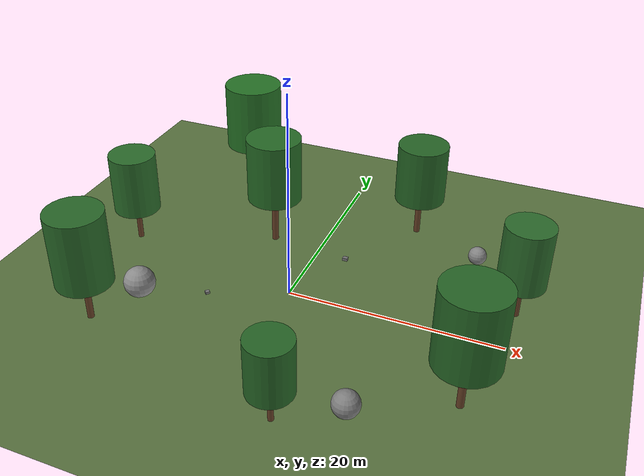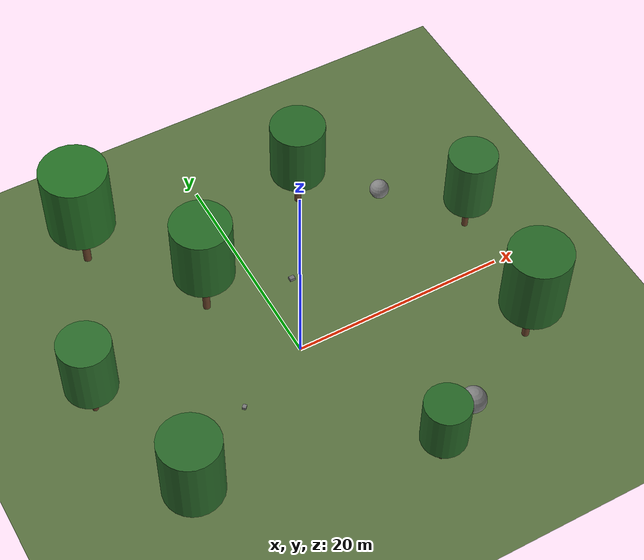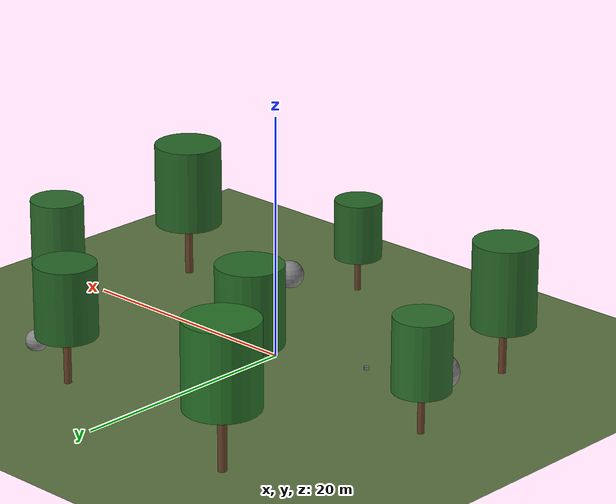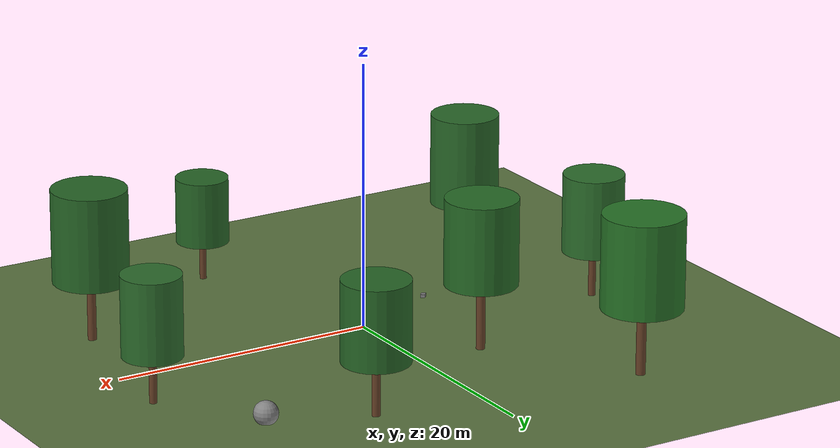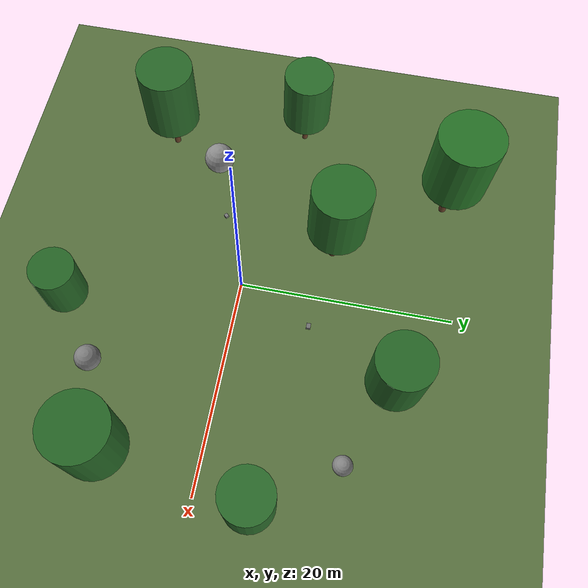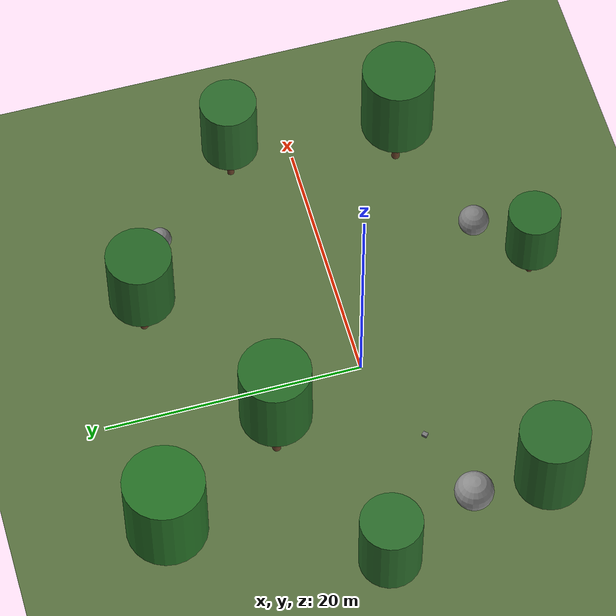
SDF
<?xml version="1.0" encoding="UTF-8"?>
<sdf version="1.9">
  <world name="outdoor_forest">
    <physics type="ode">
      <max_step_size>0.004</max_step_size>
      <real_time_factor>1.0</real_time_factor>
      <real_time_update_rate>250</real_time_update_rate>
    </physics>
    <gravity>0 0 -9.8</gravity>
    <magnetic_field>6e-06 2.3e-05 -4.2e-05</magnetic_field>
    <atmosphere type="adiabatic"/>
    <scene>
      <grid>false</grid>
      <ambient>0.4 0.4 0.4 1</ambient>
      <background>0.7 0.7 0.7 1</background>
      <shadows>true</shadows>
    </scene>
    <model name="ground_plane">
      <static>true</static>
      <link name="link">
        <collision name="collision">
          <geometry>
            <plane>
              <normal>0 0 1</normal>
              <size>1 1</size>
            </plane>
          </geometry>
          <surface>
            <friction>
              <ode/>
            </friction>
            <bounce/>
            <contact/>
          </surface>
        </collision>
        <visual name="visual">
          <geometry>
            <plane>
              <normal>0 0 1</normal>
              <size>500 500</size>
            </plane>
          </geometry>
          <material>
            <ambient>0.25 0.35 0.15 1</ambient>
            <diffuse>0.35 0.45 0.25 1</diffuse>
            <specular>0.05 0.05 0.05 1</specular>
          </material>
        </visual>
        <pose>0 0 0 0 -0 0</pose>
        <inertial>
          <pose>0 0 0 0 -0 0</pose>
          <mass>1</mass>
          <inertia>
            <ixx>1</ixx>
            <ixy>0</ixy>
            <ixz>0</ixz>
            <iyy>1</iyy>
            <iyz>0</iyz>
            <izz>1</izz>
          </inertia>
        </inertial>
        <enable_wind>false</enable_wind>
      </link>
      <pose>0 0 0 0 -0 0</pose>
      <self_collide>false</self_collide>
    </model>
    <light name="sunUTC" type="directional">
      <pose>0 0 500 0 -0 0</pose>
      <cast_shadows>true</cast_shadows>
      <intensity>1</intensity>
      <direction>0.001 0.625 -0.78</direction>
      <diffuse>0.904 0.904 0.904 1</diffuse>
      <specular>0.271 0.271 0.271 1</specular>
      <attenuation>
        <range>2000</range>
        <linear>0</linear>
        <constant>1</constant>
        <quadratic>0</quadratic>
      </attenuation>
      <spot>
        <inner_angle>0</inner_angle>
        <outer_angle>0</outer_angle>
        <falloff>0</falloff>
      </spot>
    </light>
    <spherical_coordinates>
      <surface_model>EARTH_WGS84</surface_model>
      <world_frame_orientation>ENU</world_frame_orientation>
      <latitude_deg>47.397971057728974</latitude_deg>
      <longitude_deg> 8.546163739800146</longitude_deg>
      <elevation>0</elevation>
    </spherical_coordinates>
    <!-- Forest Trees - Realistic pine/fir style with trunk and canopy -->
    <!-- Tree cluster 1 - North -->
    <model name="pine_tree_1">
      <pose>8 15 0 0 0 0</pose>
      <static>true</static>
      <link name="trunk">
        <pose>0 0 4 0 0 0</pose>
        <collision name="trunk_collision">
          <geometry>
            <cylinder>
              <radius>0.3</radius>
              <length>8</length>
            </cylinder>
          </geometry>
        </collision>
        <visual name="trunk_visual">
          <geometry>
            <cylinder>
              <radius>0.3</radius>
              <length>8</length>
            </cylinder>
          </geometry>
          <material>
            <ambient>0.3 0.2 0.1 1</ambient>
            <diffuse>0.4 0.25 0.15 1</diffuse>
          </material>
        </visual>
      </link>
      <link name="canopy">
        <pose>0 0 7 0 0 0</pose>
        <collision name="canopy_collision">
          <geometry>
            <cylinder>
              <radius>2.5</radius>
              <length>6</length>
            </cylinder>
          </geometry>
        </collision>
        <visual name="canopy_visual">
          <geometry>
            <cylinder>
              <radius>2.5</radius>
              <length>6</length>
            </cylinder>
          </geometry>
          <material>
            <ambient>0.1 0.3 0.1 1</ambient>
            <diffuse>0.15 0.4 0.15 1</diffuse>
          </material>
        </visual>
      </link>
    </model>

    <model name="pine_tree_2">
      <pose>-12 18 0 0 0 0.5</pose>
      <static>true</static>
      <link name="trunk">
        <pose>0 0 5 0 0 0</pose>
        <collision name="trunk_collision">
          <geometry>
            <cylinder>
              <radius>0.35</radius>
              <length>10</length>
            </cylinder>
          </geometry>
        </collision>
        <visual name="trunk_visual">
          <geometry>
            <cylinder>
              <radius>0.35</radius>
              <length>10</length>
            </cylinder>
          </geometry>
          <material>
            <ambient>0.3 0.2 0.1 1</ambient>
            <diffuse>0.4 0.25 0.15 1</diffuse>
          </material>
        </visual>
      </link>
      <link name="canopy">
        <pose>0 0 8.5 0 0 0</pose>
        <collision name="canopy_collision">
          <geometry>
            <cylinder>
              <radius>3.0</radius>
              <length>7</length>
            </cylinder>
          </geometry>
        </collision>
        <visual name="canopy_visual">
          <geometry>
            <cylinder>
              <radius>3.0</radius>
              <length>7</length>
            </cylinder>
          </geometry>
          <material>
            <ambient>0.1 0.35 0.1 1</ambient>
            <diffuse>0.15 0.45 0.15 1</diffuse>
          </material>
        </visual>
      </link>
    </model>

    <!-- Tree cluster 2 - East -->
    <model name="pine_tree_3">
      <pose>20 5 0 0 0 1.2</pose>
      <static>true</static>
      <link name="trunk">
        <pose>0 0 3.5 0 0 0</pose>
        <collision name="trunk_collision">
          <geometry>
            <cylinder>
              <radius>0.28</radius>
              <length>7</length>
            </cylinder>
          </geometry>
        </collision>
        <visual name="trunk_visual">
          <geometry>
            <cylinder>
              <radius>0.28</radius>
              <length>7</length>
            </cylinder>
          </geometry>
          <material>
            <ambient>0.3 0.2 0.1 1</ambient>
            <diffuse>0.4 0.25 0.15 1</diffuse>
          </material>
        </visual>
      </link>
      <link name="canopy">
        <pose>0 0 6.5 0 0 0</pose>
        <collision name="canopy_collision">
          <geometry>
            <cylinder>
              <radius>2.2</radius>
              <length>6</length>
            </cylinder>
          </geometry>
        </collision>
        <visual name="canopy_visual">
          <geometry>
            <cylinder>
              <radius>2.2</radius>
              <length>6</length>
            </cylinder>
          </geometry>
          <material>
            <ambient>0.12 0.32 0.12 1</ambient>
            <diffuse>0.17 0.42 0.17 1</diffuse>
          </material>
        </visual>
      </link>
    </model>

    <model name="pine_tree_4">
      <pose>18 -8 0 0 0 2.1</pose>
      <static>true</static>
      <link name="trunk">
        <pose>0 0 4.5 0 0 0</pose>
        <collision name="trunk_collision">
          <geometry>
            <cylinder>
              <radius>0.32</radius>
              <length>9</length>
            </cylinder>
          </geometry>
        </collision>
        <visual name="trunk_visual">
          <geometry>
            <cylinder>
              <radius>0.32</radius>
              <length>9</length>
            </cylinder>
          </geometry>
          <material>
            <ambient>0.3 0.2 0.1 1</ambient>
            <diffuse>0.4 0.25 0.15 1</diffuse>
          </material>
        </visual>
      </link>
      <link name="canopy">
        <pose>0 0 8 0 0 0</pose>
        <collision name="canopy_collision">
          <geometry>
            <cylinder>
              <radius>2.8</radius>
              <length>7</length>
            </cylinder>
          </geometry>
        </collision>
        <visual name="canopy_visual">
          <geometry>
            <cylinder>
              <radius>2.8</radius>
              <length>7</length>
            </cylinder>
          </geometry>
          <material>
            <ambient>0.1 0.3 0.1 1</ambient>
            <diffuse>0.15 0.4 0.15 1</diffuse>
          </material>
        </visual>
      </link>
    </model>

    <!-- Tree cluster 3 - West -->
    <model name="pine_tree_5">
      <pose>-15 -10 0 0 0 0.8</pose>
      <static>true</static>
      <link name="trunk">
        <pose>0 0 4 0 0 0</pose>
        <collision name="trunk_collision">
          <geometry>
            <cylinder>
              <radius>0.3</radius>
              <length>8</length>
            </cylinder>
          </geometry>
        </collision>
        <visual name="trunk_visual">
          <geometry>
            <cylinder>
              <radius>0.3</radius>
              <length>8</length>
            </cylinder>
          </geometry>
          <material>
            <ambient>0.3 0.2 0.1 1</ambient>
            <diffuse>0.4 0.25 0.15 1</diffuse>
          </material>
        </visual>
      </link>
      <link name="canopy">
        <pose>0 0 7.5 0 0 0</pose>
        <collision name="canopy_collision">
          <geometry>
            <cylinder>
              <radius>2.6</radius>
              <length>7</length>
            </cylinder>
          </geometry>
        </collision>
        <visual name="canopy_visual">
          <geometry>
            <cylinder>
              <radius>2.6</radius>
              <length>7</length>
            </cylinder>
          </geometry>
          <material>
            <ambient>0.11 0.31 0.11 1</ambient>
            <diffuse>0.16 0.41 0.16 1</diffuse>
          </material>
        </visual>
      </link>
    </model>

    <model name="pine_tree_6">
      <pose>-18 3 0 0 0 1.5</pose>
      <static>true</static>
      <link name="trunk">
        <pose>0 0 3.5 0 0 0</pose>
        <collision name="trunk_collision">
          <geometry>
            <cylinder>
              <radius>0.27</radius>
              <length>7</length>
            </cylinder>
          </geometry>
        </collision>
        <visual name="trunk_visual">
          <geometry>
            <cylinder>
              <radius>0.27</radius>
              <length>7</length>
            </cylinder>
          </geometry>
          <material>
            <ambient>0.3 0.2 0.1 1</ambient>
            <diffuse>0.4 0.25 0.15 1</diffuse>
          </material>
        </visual>
      </link>
      <link name="canopy">
        <pose>0 0 6.5 0 0 0</pose>
        <collision name="canopy_collision">
          <geometry>
            <cylinder>
              <radius>2.3</radius>
              <length>6</length>
            </cylinder>
          </geometry>
        </collision>
        <visual name="canopy_visual">
          <geometry>
            <cylinder>
              <radius>2.3</radius>
              <length>6</length>
            </cylinder>
          </geometry>
          <material>
            <ambient>0.12 0.33 0.12 1</ambient>
            <diffuse>0.17 0.43 0.17 1</diffuse>
          </material>
        </visual>
      </link>
    </model>

    <!-- Additional scattered trees -->
    <model name="pine_tree_7">
      <pose>5 -15 0 0 0 2.5</pose>
      <static>true</static>
      <link name="trunk">
        <pose>0 0 3 0 0 0</pose>
        <collision name="trunk_collision">
          <geometry>
            <cylinder>
              <radius>0.25</radius>
              <length>6</length>
            </cylinder>
          </geometry>
        </collision>
        <visual name="trunk_visual">
          <geometry>
            <cylinder>
              <radius>0.25</radius>
              <length>6</length>
            </cylinder>
          </geometry>
          <material>
            <ambient>0.3 0.2 0.1 1</ambient>
            <diffuse>0.4 0.25 0.15 1</diffuse>
          </material>
        </visual>
      </link>
      <link name="canopy">
        <pose>0 0 5.5 0 0 0</pose>
        <collision name="canopy_collision">
          <geometry>
            <cylinder>
              <radius>2.0</radius>
              <length>5</length>
            </cylinder>
          </geometry>
        </collision>
        <visual name="canopy_visual">
          <geometry>
            <cylinder>
              <radius>2.0</radius>
              <length>5</length>
            </cylinder>
          </geometry>
          <material>
            <ambient>0.1 0.3 0.1 1</ambient>
            <diffuse>0.15 0.4 0.15 1</diffuse>
          </material>
        </visual>
      </link>
    </model>

    <model name="pine_tree_8">
      <pose>-5 8 0 0 0 0.3</pose>
      <static>true</static>
      <link name="trunk">
        <pose>0 0 4.5 0 0 0</pose>
        <collision name="trunk_collision">
          <geometry>
            <cylinder>
              <radius>0.33</radius>
              <length>9</length>
            </cylinder>
          </geometry>
        </collision>
        <visual name="trunk_visual">
          <geometry>
            <cylinder>
              <radius>0.33</radius>
              <length>9</length>
            </cylinder>
          </geometry>
          <material>
            <ambient>0.3 0.2 0.1 1</ambient>
            <diffuse>0.4 0.25 0.15 1</diffuse>
          </material>
        </visual>
      </link>
      <link name="canopy">
        <pose>0 0 8.2 0 0 0</pose>
        <collision name="canopy_collision">
          <geometry>
            <cylinder>
              <radius>2.7</radius>
              <length>6.5</length>
            </cylinder>
          </geometry>
        </collision>
        <visual name="canopy_visual">
          <geometry>
            <cylinder>
              <radius>2.7</radius>
              <length>6.5</length>
            </cylinder>
          </geometry>
          <material>
            <ambient>0.1 0.32 0.1 1</ambient>
            <diffuse>0.15 0.42 0.15 1</diffuse>
          </material>
        </visual>
      </link>
    </model>

    <!-- Forest boulders and rocks -->
    <model name="boulder_1">
      <pose>10 -12 0.8 0 0 0.5</pose>
      <static>true</static>
      <link name="link">
        <collision name="collision">
          <geometry>
            <sphere>
              <radius>1.2</radius>
            </sphere>
          </geometry>
        </collision>
        <visual name="visual">
          <geometry>
            <sphere>
              <radius>1.2</radius>
            </sphere>
          </geometry>
          <material>
            <ambient>0.4 0.4 0.4 1</ambient>
            <diffuse>0.5 0.5 0.5 1</diffuse>
          </material>
        </visual>
      </link>
    </model>

    <model name="boulder_2">
      <pose>-13 -5 1.0 0 0 1.2</pose>
      <static>true</static>
      <link name="link">
        <collision name="collision">
          <geometry>
            <sphere>
              <radius>1.5</radius>
            </sphere>
          </geometry>
        </collision>
        <visual name="visual">
          <geometry>
            <sphere>
              <radius>1.5</radius>
            </sphere>
          </geometry>
          <material>
            <ambient>0.45 0.45 0.45 1</ambient>
            <diffuse>0.55 0.55 0.55 1</diffuse>
          </material>
        </visual>
      </link>
    </model>

    <model name="boulder_3">
      <pose>15 12 0.6 0 0 2.1</pose>
      <static>true</static>
      <link name="link">
        <collision name="collision">
          <geometry>
            <sphere>
              <radius>0.9</radius>
            </sphere>
          </geometry>
        </collision>
        <visual name="visual">
          <geometry>
            <sphere>
              <radius>0.9</radius>
            </sphere>
          </geometry>
          <material>
            <ambient>0.42 0.42 0.42 1</ambient>
            <diffuse>0.52 0.52 0.52 1</diffuse>
          </material>
        </visual>
      </link>
    </model>

    <!-- Small rocks scattered on forest floor -->
    <model name="rock_1">
      <pose>3 7 0.2 0 0 0</pose>
      <static>true</static>
      <link name="link">
        <collision name="collision">
          <geometry>
            <box>
              <size>0.5 0.4 0.3</size>
            </box>
          </geometry>
        </collision>
        <visual name="visual">
          <geometry>
            <box>
              <size>0.5 0.4 0.3</size>
            </box>
          </geometry>
          <material>
            <ambient>0.35 0.35 0.35 1</ambient>
            <diffuse>0.45 0.45 0.45 1</diffuse>
          </material>
        </visual>
      </link>
    </model>

    <model name="rock_2">
      <pose>-7 -3 0.15 0 0 0.8</pose>
      <static>true</static>
      <link name="link">
        <collision name="collision">
          <geometry>
            <box>
              <size>0.4 0.35 0.25</size>
            </box>
          </geometry>
        </collision>
        <visual name="visual">
          <geometry>
            <box>
              <size>0.4 0.35 0.25</size>
            </box>
          </geometry>
          <material>
            <ambient>0.38 0.38 0.38 1</ambient>
            <diffuse>0.48 0.48 0.48 1</diffuse>
          </material>
        </visual>
      </link>
    </model>

  </world>
</sdf>
